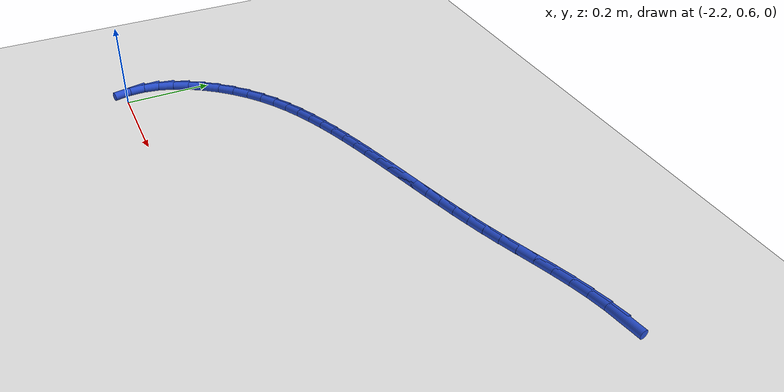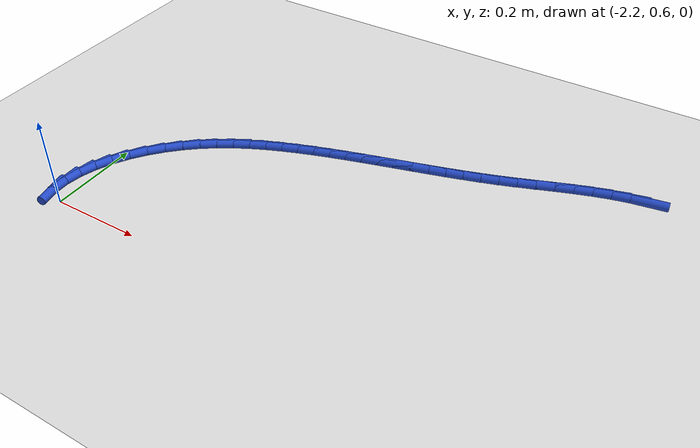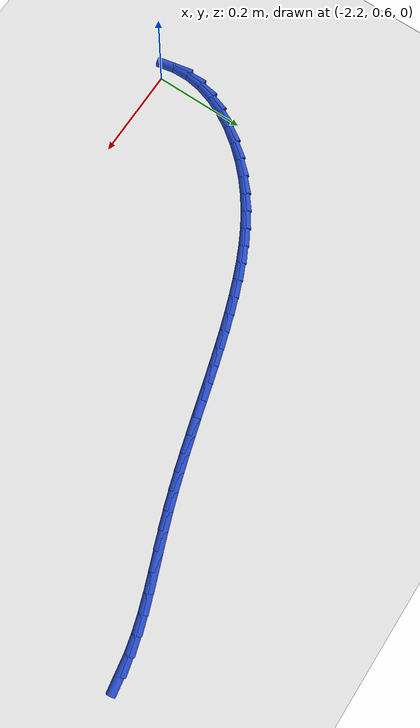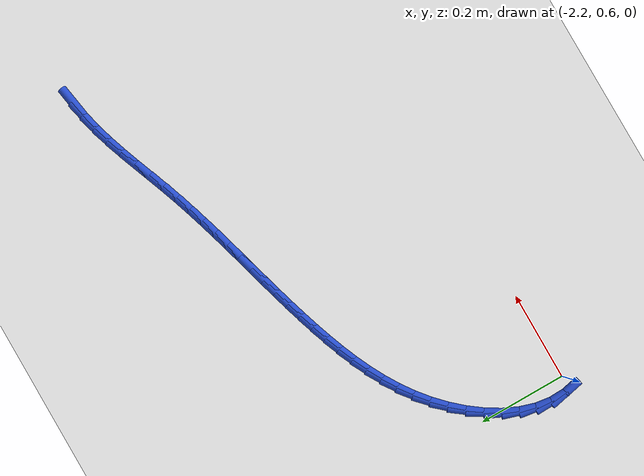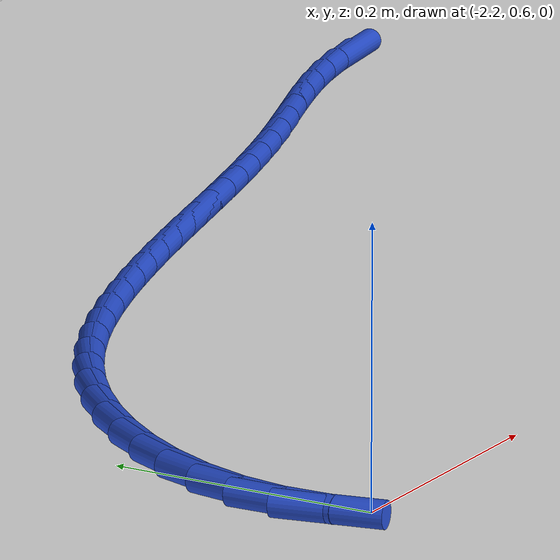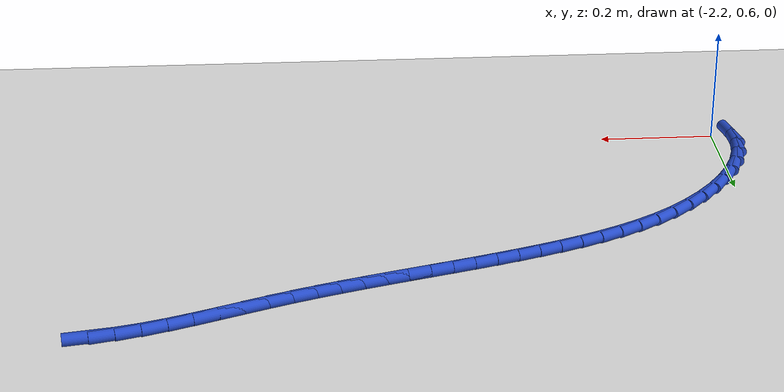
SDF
<sdf version="1.6">
 <world name="default">
  <model name="ground_plane">
   <static>1</static>
   <link name="link">
    <collision name="collision">
     <geometry><plane><normal>0 0 1</normal><size>100 100</size></plane></geometry>
     <surface><friction><ode><mu>100</mu><mu2>50</mu2></ode></friction></surface>
    </collision>
    <visual name="visual">
     <cast_shadows>0</cast_shadows>
     <geometry><plane><normal>0 0 1</normal><size>100 100</size></plane></geometry>
     <material>
      <script><uri>file://media/materials/scripts/gazebo.material</uri><name>Gazebo/WhiteGlow</name></script>
     </material>
    </visual>
   </link>
  </model>
  <model name="line">
   <link name="link_49">
    <pose>-1.1524115934238095 1.2242258683647065 0.01 0 1.57 0.16055345264056176</pose>
    <collision name="collision">
     <geometry><cylinder><radius>0.01</radius><length>0.08</length></cylinder></geometry>
    </collision>
    <visual name="visual">
     <material>
      <script><name>Gazebo/Blue</name><uri>file://media/materials/scripts/gazebo.material</uri></script>
     </material>
     <geometry><cylinder><radius>0.01</radius><length>0.08</length></cylinder></geometry>
    </visual>
   </link>
   <link name="link_50">
    <pose>-1.1895128650221878 1.2182174147123064 0.01 0 1.57 0.23270062947565884</pose>
    <collision name="collision">
     <geometry><cylinder><radius>0.01</radius><length>0.08</length></cylinder></geometry>
    </collision>
    <visual name="visual">
     <material>
      <script><name>Gazebo/Blue</name><uri>file://media/materials/scripts/gazebo.material</uri></script>
     </material>
     <geometry><cylinder><radius>0.01</radius><length>0.08</length></cylinder></geometry>
    </visual>
   </link>
   <link name="link_51">
    <pose>-1.2265716653835232 1.2094347066365678 0.01 0 1.57 0.2882447322584531</pose>
    <collision name="collision">
     <geometry><cylinder><radius>0.01</radius><length>0.08</length></cylinder></geometry>
    </collision>
    <visual name="visual">
     <material>
      <script><name>Gazebo/Blue</name><uri>file://media/materials/scripts/gazebo.material</uri></script>
     </material>
     <geometry><cylinder><radius>0.01</radius><length>0.08</length></cylinder></geometry>
    </visual>
   </link>
   <link name="link_52">
    <pose>-1.2635743690078853 1.1984633232105633 0.01 0 1.57 0.32815750073493194</pose>
    <collision name="collision">
     <geometry><cylinder><radius>0.01</radius><length>0.08</length></cylinder></geometry>
    </collision>
    <visual name="visual">
     <material>
      <script><name>Gazebo/Blue</name><uri>file://media/materials/scripts/gazebo.material</uri></script>
     </material>
     <geometry><cylinder><radius>0.01</radius><length>0.08</length></cylinder></geometry>
    </visual>
   </link>
   <link name="link_53">
    <pose>-1.3005073503953455 1.1858888435073665 0.01 0 1.57 0.3533682459631565</pose>
    <collision name="collision">
     <geometry><cylinder><radius>0.01</radius><length>0.08</length></cylinder></geometry>
    </collision>
    <visual name="visual">
     <material>
      <script><name>Gazebo/Blue</name><uri>file://media/materials/scripts/gazebo.material</uri></script>
     </material>
     <geometry><cylinder><radius>0.01</radius><length>0.08</length></cylinder></geometry>
    </visual>
   </link>
   <link name="link_54">
    <pose>-1.3373569840459727 1.1722968466000514 0.01 0 1.57 0.3645234744854424</pose>
    <collision name="collision">
     <geometry><cylinder><radius>0.01</radius><length>0.08</length></cylinder></geometry>
    </collision>
    <visual name="visual">
     <material>
      <script><name>Gazebo/Blue</name><uri>file://media/materials/scripts/gazebo.material</uri></script>
     </material>
     <geometry><cylinder><radius>0.01</radius><length>0.08</length></cylinder></geometry>
    </visual>
   </link>
   <link name="link_55">
    <pose>-1.3741096444598373 1.1582729115616905 0.01 0 1.57 0.36186603263953043</pose>
    <collision name="collision">
     <geometry><cylinder><radius>0.01</radius><length>0.08</length></cylinder></geometry>
    </collision>
    <visual name="visual">
     <material>
      <script><name>Gazebo/Blue</name><uri>file://media/materials/scripts/gazebo.material</uri></script>
     </material>
     <geometry><cylinder><radius>0.01</radius><length>0.08</length></cylinder></geometry>
    </visual>
   </link>
   <link name="link_56">
    <pose>-1.4107517061370105 1.1444026174653583 0.01 0 1.57 0.3456758314015255</pose>
    <collision name="collision">
     <geometry><cylinder><radius>0.01</radius><length>0.08</length></cylinder></geometry>
    </collision>
    <visual name="visual">
     <material>
      <script><name>Gazebo/Blue</name><uri>file://media/materials/scripts/gazebo.material</uri></script>
     </material>
     <geometry><cylinder><radius>0.01</radius><length>0.08</length></cylinder></geometry>
    </visual>
   </link>
   <link name="link_57">
    <pose>-1.4472698155649242 1.1312511374072356 0.01 0 1.57 0.3245727060012548</pose>
    <collision name="collision">
     <geometry><cylinder><radius>0.01</radius><length>0.08</length></cylinder></geometry>
    </collision>
    <visual name="visual">
     <material>
      <script><name>Gazebo/Blue</name><uri>file://media/materials/scripts/gazebo.material</uri></script>
     </material>
     <geometry><cylinder><radius>0.01</radius><length>0.08</length></cylinder></geometry>
    </visual>
   </link>
   <link name="link_58">
    <pose>-1.4836556217022525 1.1190083317792414 0.01 0 1.57 0.3065445010094057</pose>
    <collision name="collision">
     <geometry><cylinder><radius>0.01</radius><length>0.08</length></cylinder></geometry>
    </collision>
    <visual name="visual">
     <material>
      <script><name>Gazebo/Blue</name><uri>file://media/materials/scripts/gazebo.material</uri></script>
     </material>
     <geometry><cylinder><radius>0.01</radius><length>0.08</length></cylinder></geometry>
    </visual>
   </link>
   <link name="link_59">
    <pose>-1.519905165270487 1.1075345669494088 0.01 0 1.57 0.29203368374038025</pose>
    <collision name="collision">
     <geometry><cylinder><radius>0.01</radius><length>0.08</length></cylinder></geometry>
    </collision>
    <visual name="visual">
     <material>
      <script><name>Gazebo/Blue</name><uri>file://media/materials/scripts/gazebo.material</uri></script>
     </material>
     <geometry><cylinder><radius>0.01</radius><length>0.08</length></cylinder></geometry>
    </visual>
   </link>
   <link name="link_60">
    <pose>-1.5560146361873424 1.0966790157705117 0.01 0 1.57 0.2811835927856022</pose>
    <collision name="collision">
     <geometry><cylinder><radius>0.01</radius><length>0.08</length></cylinder></geometry>
    </collision>
    <visual name="visual">
     <material>
      <script><name>Gazebo/Blue</name><uri>file://media/materials/scripts/gazebo.material</uri></script>
     </material>
     <geometry><cylinder><radius>0.01</radius><length>0.08</length></cylinder></geometry>
    </visual>
   </link>
   <link name="link_61">
    <pose>-1.5919802243705317 1.0862908510953242 0.01 0 1.57 0.27411110640501496</pose>
    <collision name="collision">
     <geometry><cylinder><radius>0.01</radius><length>0.08</length></cylinder></geometry>
    </collision>
    <visual name="visual">
     <material>
      <script><name>Gazebo/Blue</name><uri>file://media/materials/scripts/gazebo.material</uri></script>
     </material>
     <geometry><cylinder><radius>0.01</radius><length>0.08</length></cylinder></geometry>
    </visual>
   </link>
   <link name="link_62">
    <pose>-1.6277981197377693 1.0762192457766204 0.01 0 1.57 0.2709088959671338</pose>
    <collision name="collision">
     <geometry><cylinder><radius>0.01</radius><length>0.08</length></cylinder></geometry>
    </collision>
    <visual name="visual">
     <material>
      <script><name>Gazebo/Blue</name><uri>file://media/materials/scripts/gazebo.material</uri></script>
     </material>
     <geometry><cylinder><radius>0.01</radius><length>0.08</length></cylinder></geometry>
    </visual>
   </link>
   <link name="link_63">
    <pose>-1.663464512206771 1.0663133726671745 0.01 0 1.57 0.27164680582059736</pose>
    <collision name="collision">
     <geometry><cylinder><radius>0.01</radius><length>0.08</length></cylinder></geometry>
    </collision>
    <visual name="visual">
     <material>
      <script><name>Gazebo/Blue</name><uri>file://media/materials/scripts/gazebo.material</uri></script>
     </material>
     <geometry><cylinder><radius>0.01</radius><length>0.08</length></cylinder></geometry>
    </visual>
   </link>
   <link name="link_64">
    <pose>-1.6989755916952491 1.056422404619761 0.01 0 1.57 0.27637200443271176</pose>
    <collision name="collision">
     <geometry><cylinder><radius>0.01</radius><length>0.08</length></cylinder></geometry>
    </collision>
    <visual name="visual">
     <material>
      <script><name>Gazebo/Blue</name><uri>file://media/materials/scripts/gazebo.material</uri></script>
     </material>
     <geometry><cylinder><radius>0.01</radius><length>0.08</length></cylinder></geometry>
    </visual>
   </link>
   <link name="link_65">
    <pose>-1.7343275481209188 1.0463955144871533 0.01 0 1.57 0.2851076676518039</pose>
    <collision name="collision">
     <geometry><cylinder><radius>0.01</radius><length>0.08</length></cylinder></geometry>
    </collision>
    <visual name="visual">
     <material>
      <script><name>Gazebo/Blue</name><uri>file://media/materials/scripts/gazebo.material</uri></script>
     </material>
     <geometry><cylinder><radius>0.01</radius><length>0.08</length></cylinder></geometry>
    </visual>
   </link>
   <link name="link_66">
    <pose>-1.7695165714014949 1.036081875122126 0.01 0 1.57 0.29785008741014457</pose>
    <collision name="collision">
     <geometry><cylinder><radius>0.01</radius><length>0.08</length></cylinder></geometry>
    </collision>
    <visual name="visual">
     <material>
      <script><name>Gazebo/Blue</name><uri>file://media/materials/scripts/gazebo.material</uri></script>
     </material>
     <geometry><cylinder><radius>0.01</radius><length>0.08</length></cylinder></geometry>
    </visual>
   </link>
   <link name="link_67">
    <pose>-1.8045388514546898 1.0253306593774527 0.01 0 1.57 0.3145642561746845</pose>
    <collision name="collision">
     <geometry><cylinder><radius>0.01</radius><length>0.08</length></cylinder></geometry>
    </collision>
    <visual name="visual">
     <material>
      <script><name>Gazebo/Blue</name><uri>file://media/materials/scripts/gazebo.material</uri></script>
     </material>
     <geometry><cylinder><radius>0.01</radius><length>0.08</length></cylinder></geometry>
    </visual>
   </link>
   <link name="link_68">
    <pose>-1.8393905781982196 1.0139910401059082 0.01 0 1.57 0.3351785629790822</pose>
    <collision name="collision">
     <geometry><cylinder><radius>0.01</radius><length>0.08</length></cylinder></geometry>
    </collision>
    <visual name="visual">
     <material>
      <script><name>Gazebo/Blue</name><uri>file://media/materials/scripts/gazebo.material</uri></script>
     </material>
     <geometry><cylinder><radius>0.01</radius><length>0.08</length></cylinder></geometry>
    </visual>
   </link>
   <link name="link_69">
    <pose>-1.8740679286893163 1.0019121792608658 0.01 0 1.57 0.3606069490011486</pose>
    <collision name="collision">
     <geometry><cylinder><radius>0.01</radius><length>0.08</length></cylinder></geometry>
    </collision>
    <visual name="visual">
     <material>
      <script><name>Gazebo/Blue</name><uri>file://media/materials/scripts/gazebo.material</uri></script>
     </material>
     <geometry><cylinder><radius>0.01</radius><length>0.08</length></cylinder></geometry>
    </visual>
   </link>
   <link name="link_70">
    <pose>-1.9085339674809465 0.988915175583319 0.01 0 1.57 0.3940182166056302</pose>
    <collision name="collision">
     <geometry><cylinder><radius>0.01</radius><length>0.08</length></cylinder></geometry>
    </collision>
    <visual name="visual">
     <material>
      <script><name>Gazebo/Blue</name><uri>file://media/materials/scripts/gazebo.material</uri></script>
     </material>
     <geometry><cylinder><radius>0.01</radius><length>0.08</length></cylinder></geometry>
    </visual>
   </link>
   <link name="link_71">
    <pose>-1.9426470018116906 0.9747323448355233 0.01 0 1.57 0.4360146030309406</pose>
    <collision name="collision">
     <geometry><cylinder><radius>0.01</radius><length>0.08</length></cylinder></geometry>
    </collision>
    <visual name="visual">
     <material>
      <script><name>Gazebo/Blue</name><uri>file://media/materials/scripts/gazebo.material</uri></script>
     </material>
     <geometry><cylinder><radius>0.01</radius><length>0.08</length></cylinder></geometry>
    </visual>
   </link>
   <link name="link_72">
    <pose>-1.9762446720280376 0.9590784873608651 0.01 0 1.57 0.4864691332594827</pose>
    <collision name="collision">
     <geometry><cylinder><radius>0.01</radius><length>0.08</length></cylinder></geometry>
    </collision>
    <visual name="visual">
     <material>
      <script><name>Gazebo/Blue</name><uri>file://media/materials/scripts/gazebo.material</uri></script>
     </material>
     <geometry><cylinder><radius>0.01</radius><length>0.08</length></cylinder></geometry>
    </visual>
   </link>
   <link name="link_73">
    <pose>-2.009164618476476 0.9416684035027302 0.01 0 1.57 0.5450729181938604</pose>
    <collision name="collision">
     <geometry><cylinder><radius>0.01</radius><length>0.08</length></cylinder></geometry>
    </collision>
    <visual name="visual">
     <material>
      <script><name>Gazebo/Blue</name><uri>file://media/materials/scripts/gazebo.material</uri></script>
     </material>
     <geometry><cylinder><radius>0.01</radius><length>0.08</length></cylinder></geometry>
    </visual>
   </link>
   <link name="link_74">
    <pose>-2.0412444815034947 0.9222168936045056 0.01 0 1.57 0.6112428152800717</pose>
    <collision name="collision">
     <geometry><cylinder><radius>0.01</radius><length>0.08</length></cylinder></geometry>
    </collision>
    <visual name="visual">
     <material>
      <script><name>Gazebo/Blue</name><uri>file://media/materials/scripts/gazebo.material</uri></script>
     </material>
     <geometry><cylinder><radius>0.01</radius><length>0.08</length></cylinder></geometry>
    </visual>
   </link>
   <link name="link_75">
    <pose>-2.0723219014555814 0.9004387580095766 0.01 0 1.57 0.6840450950111244</pose>
    <collision name="collision">
     <geometry><cylinder><radius>0.01</radius><length>0.08</length></cylinder></geometry>
    </collision>
    <visual name="visual">
     <material>
      <script><name>Gazebo/Blue</name><uri>file://media/materials/scripts/gazebo.material</uri></script>
     </material>
     <geometry><cylinder><radius>0.01</radius><length>0.08</length></cylinder></geometry>
    </visual>
   </link>
   <link name="link_76">
    <pose>-2.102234518679226 0.8760487970613297 0.01 0 1.57 0.7617923520248553</pose>
    <collision name="collision">
     <geometry><cylinder><radius>0.01</radius><length>0.08</length></cylinder></geometry>
    </collision>
    <visual name="visual">
     <material>
      <script><name>Gazebo/Blue</name><uri>file://media/materials/scripts/gazebo.material</uri></script>
     </material>
     <geometry><cylinder><radius>0.01</radius><length>0.08</length></cylinder></geometry>
    </visual>
   </link>
   <link name="link_77">
    <pose>-2.1307583374210037 0.8488408170672211 0.01 0 1.57 0.8424512814282521</pose>
    <collision name="collision">
     <geometry><cylinder><radius>0.01</radius><length>0.08</length></cylinder></geometry>
    </collision>
    <visual name="visual">
     <material>
      <script><name>Gazebo/Blue</name><uri>file://media/materials/scripts/gazebo.material</uri></script>
     </material>
     <geometry><cylinder><radius>0.01</radius><length>0.08</length></cylinder></geometry>
    </visual>
   </link>
   <link name="link_78">
    <pose>-2.1572902702990002 0.8190945489734079 0.01 0 1.57 0.9287494466770939</pose>
    <collision name="collision">
     <geometry><cylinder><radius>0.01</radius><length>0.08</length></cylinder></geometry>
    </collision>
    <visual name="visual">
     <material>
      <script><name>Gazebo/Blue</name><uri>file://media/materials/scripts/gazebo.material</uri></script>
     </material>
     <geometry><cylinder><radius>0.01</radius><length>0.08</length></cylinder></geometry>
    </visual>
   </link>
   <link name="link_79">
    <pose>-2.181083211089223 0.7872743289732768 0.01 0 1.57 1.024920659520491</pose>
    <collision name="collision">
     <geometry><cylinder><radius>0.01</radius><length>0.08</length></cylinder></geometry>
    </collision>
    <visual name="visual">
     <material>
      <script><name>Gazebo/Blue</name><uri>file://media/materials/scripts/gazebo.material</uri></script>
     </material>
     <geometry><cylinder><radius>0.01</radius><length>0.08</length></cylinder></geometry>
    </visual>
   </link>
   <link name="link_80">
    <pose>-2.2013897757450898 0.7538448493768721 0.01 0 1.57 1.1356368116424551</pose>
    <collision name="collision">
     <geometry><cylinder><radius>0.01</radius><length>0.08</length></cylinder></geometry>
    </collision>
    <visual name="visual">
     <material>
      <script><name>Gazebo/Blue</name><uri>file://media/materials/scripts/gazebo.material</uri></script>
     </material>
     <geometry><cylinder><radius>0.01</radius><length>0.08</length></cylinder></geometry>
    </visual>
   </link>
   <link name="link_81">
    <pose>-2.217462580220014 0.7192708024942366 0.01 0 1.57 1.2659793962680201</pose>
    <collision name="collision">
     <geometry><cylinder><radius>0.01</radius><length>0.08</length></cylinder></geometry>
    </collision>
    <visual name="visual">
     <material>
      <script><name>Gazebo/Blue</name><uri>file://media/materials/scripts/gazebo.material</uri></script>
     </material>
     <geometry><cylinder><radius>0.01</radius><length>0.08</length></cylinder></geometry>
    </visual>
   </link>
   <link name="link_82">
    <pose>-2.2285542404674126 0.6840168806354134 0.01 0 1.57 1.4207273866121837</pose>
    <collision name="collision">
     <geometry><cylinder><radius>0.01</radius><length>0.08</length></cylinder></geometry>
    </collision>
    <visual name="visual">
     <material>
      <script><name>Gazebo/Blue</name><uri>file://media/materials/scripts/gazebo.material</uri></script>
     </material>
     <geometry><cylinder><radius>0.01</radius><length>0.08</length></cylinder></geometry>
    </visual>
   </link>
   <link name="link_83">
    <pose>-2.2339173724407013 0.648547776110447 0.01 0 1.57 -1.541201754018806</pose>
    <collision name="collision">
     <geometry><cylinder><radius>0.01</radius><length>0.08</length></cylinder></geometry>
    </collision>
    <visual name="visual">
     <material>
      <script><name>Gazebo/Blue</name><uri>file://media/materials/scripts/gazebo.material</uri></script>
     </material>
     <geometry><cylinder><radius>0.01</radius><length>0.08</length></cylinder></geometry>
    </visual>
   </link>
   <link name="link_84">
    <pose>-2.23287419440731 0.6133091034123543 0.01 0 1.57 -1.3686600031722942</pose>
    <collision name="collision">
     <geometry><cylinder><radius>0.01</radius><length>0.08</length></cylinder></geometry>
    </collision>
    <visual name="visual">
     <material>
      <script><name>Gazebo/Blue</name><uri>file://media/materials/scripts/gazebo.material</uri></script>
     </material>
     <geometry><cylinder><radius>0.01</radius><length>0.08</length></cylinder></geometry>
    </visual>
   </link>
  </model>
 </world>
</sdf>
